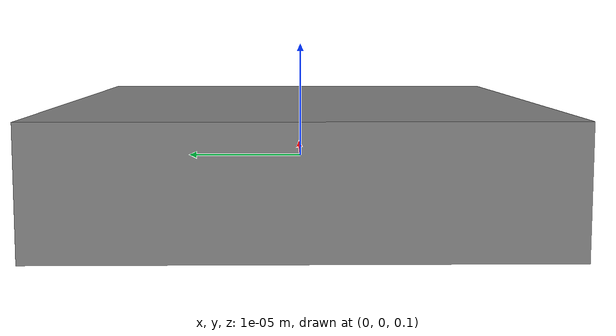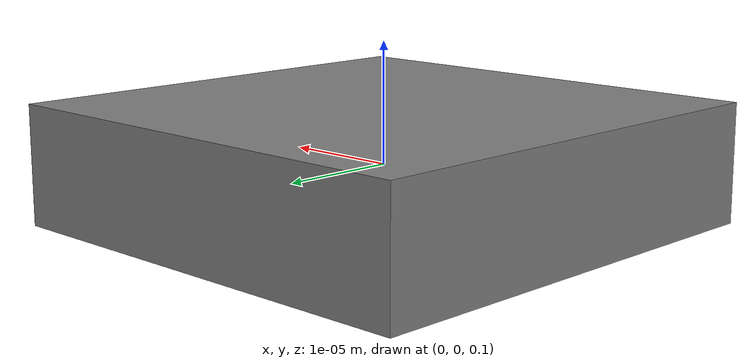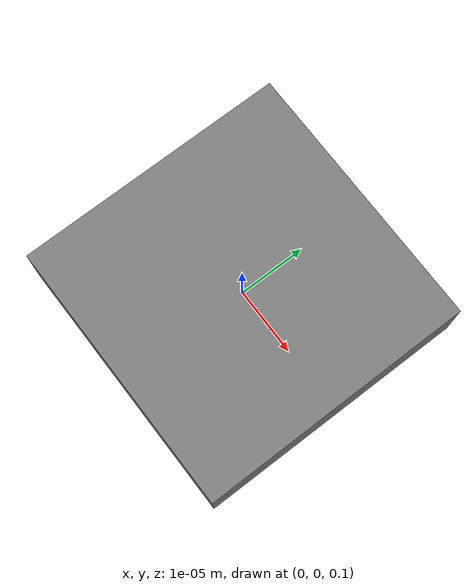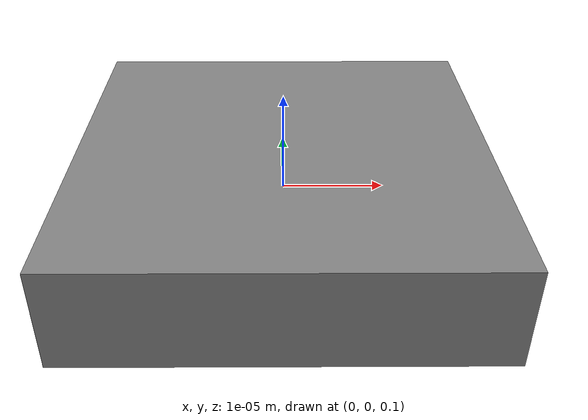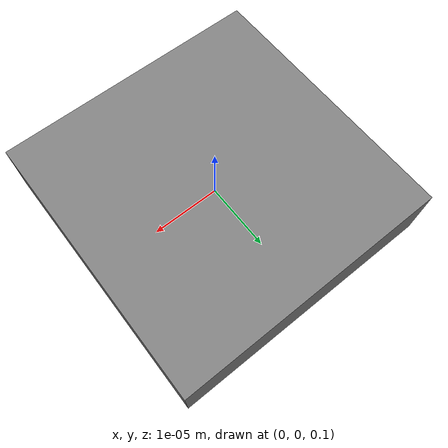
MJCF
<mujoco model="photogrammetry_texturedMesh">
  <compiler meshdir="." autolimits="true"/>
  <asset><mesh name="texturedMesh" file="texturedMesh.obj" scale="0.001 0.001 0.001"/></asset>
  <worldbody><body name="mesh_body" pos="0 0 0.1"><geom type="mesh" mesh="texturedMesh"/><joint type="free"/></body></worldbody>
</mujoco>
